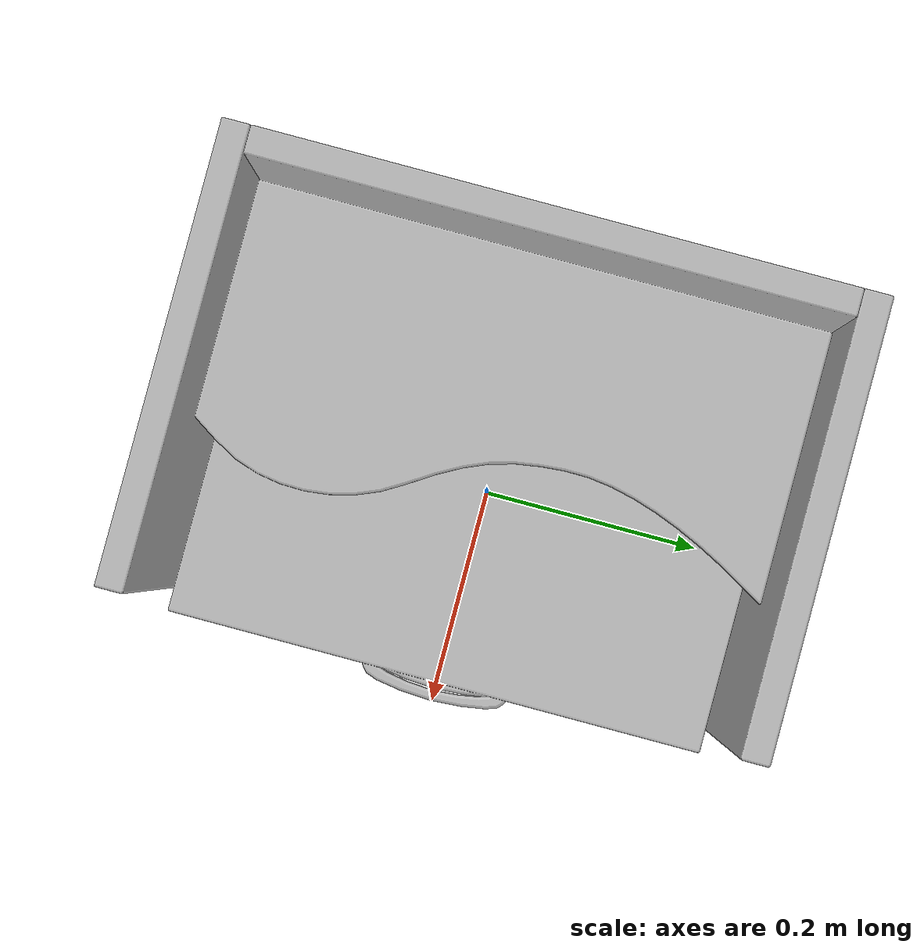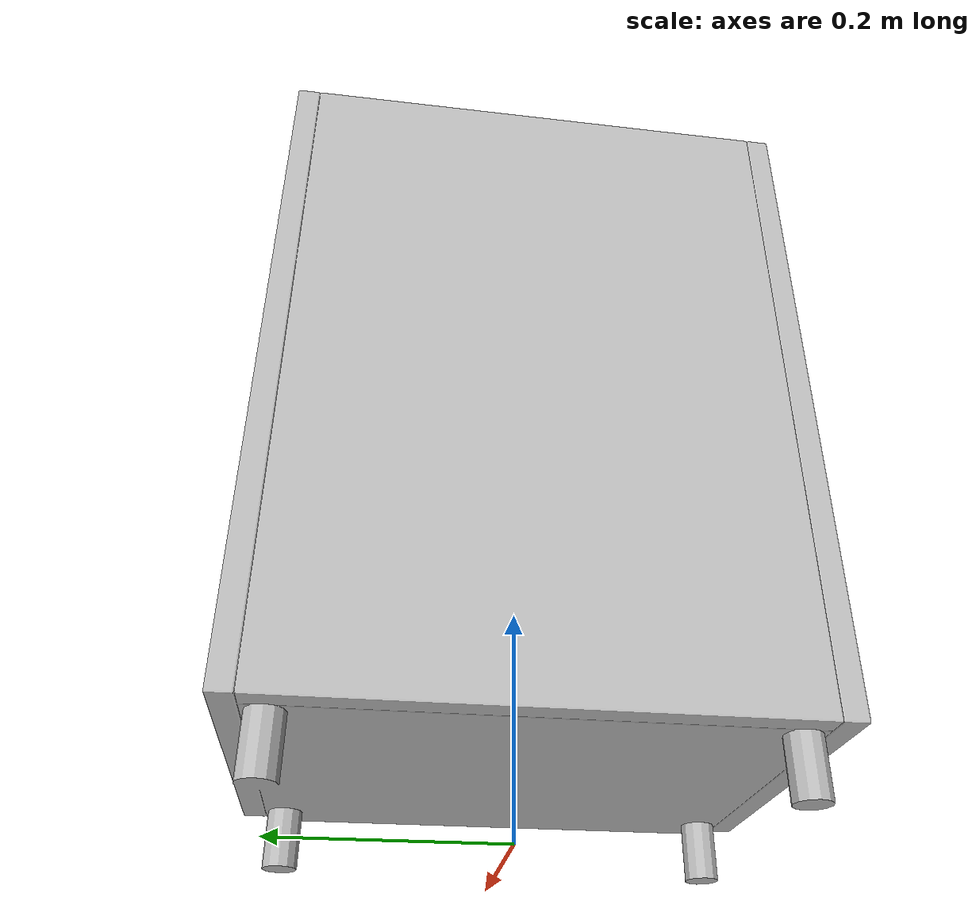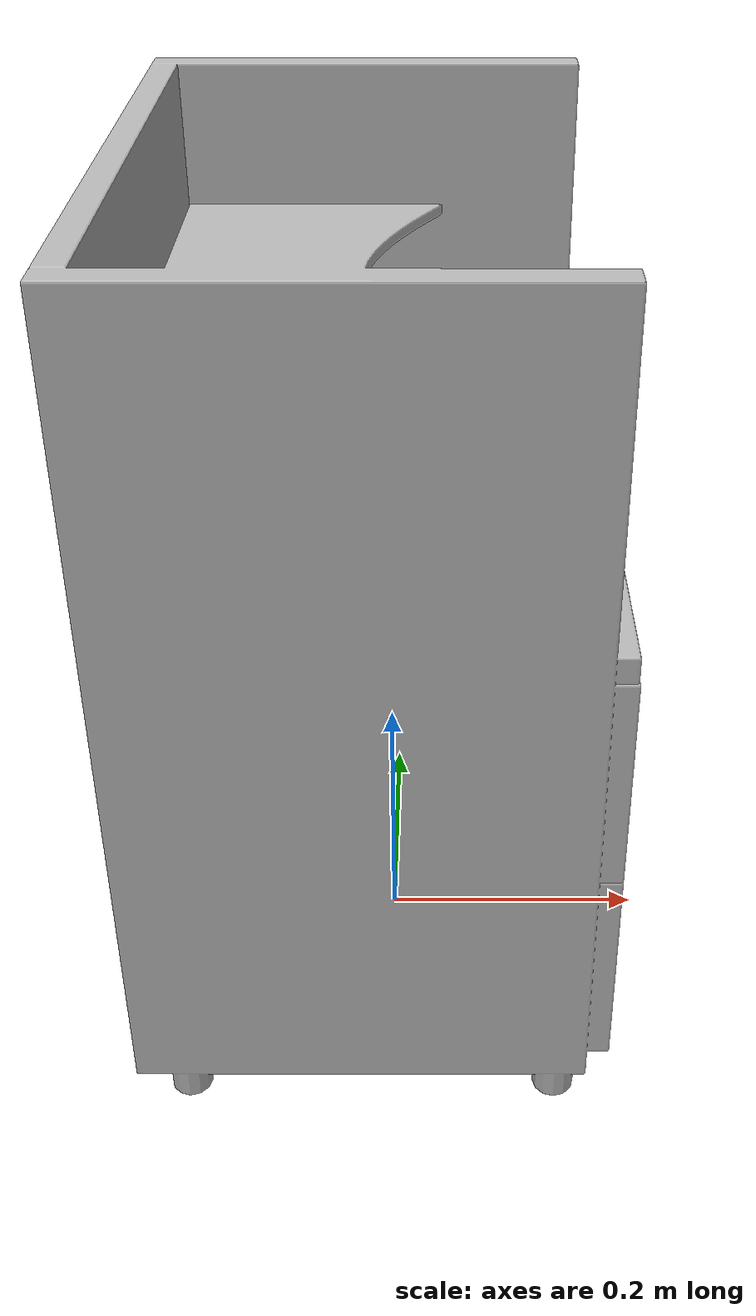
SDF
<?xml version='1.0'?>
<sdf version='1.4'>
  <model name='195'>
    <pose>0 0 0 0 0 0</pose>
    <static>true</static>
    <link name='link'>
      <collision name='collision'>
        <pose>0 0 0 0 0 0</pose>
        <geometry>
          <box>
            <size>0.359753 0.46 2</size>
          </box>
        </geometry>
      </collision>
      <visual name='visual'>
        <pose>0 0 0 0 0 0</pose>
        <geometry>
          <mesh><uri>model://195/195.dae</uri></mesh>
        </geometry>
      </visual>
    </link>
  </model>
</sdf>
